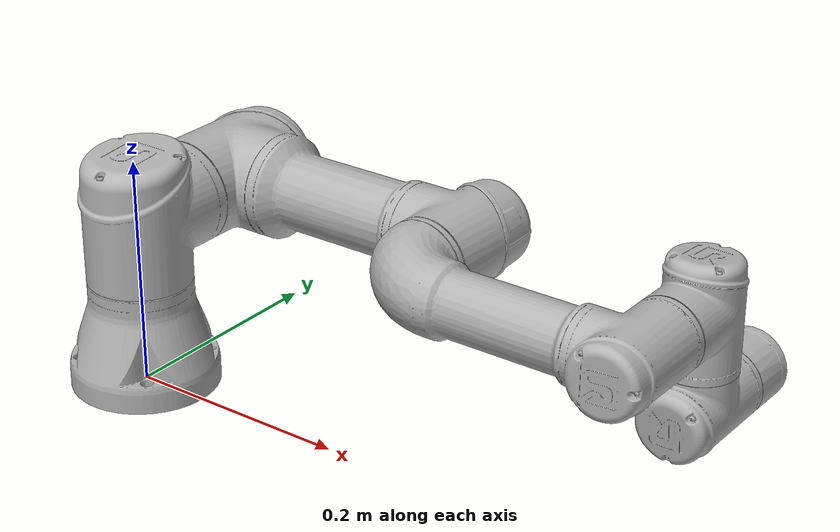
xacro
<?xml version="1.0"?>
<robot xmlns:xacro="http://ros.org/wiki/xacro"
       name="ur3e" >

  <xacro:arg name="transmission_hw_interface" default="hardware_interface/PositionJointInterface"/>

  <!-- common stuff -->
  <xacro:include filename="$(find ur_e_description)/urdf/common.gazebo.xacro" />

  <!-- ur3e -->
  <xacro:include filename="$(find ur_e_description)/urdf/ur3e.urdf.xacro" />

  <!-- arm -->
  <xacro:ur3e_robot prefix="" joint_limited="true"
    shoulder_pan_lower_limit="${-pi}" shoulder_pan_upper_limit="${pi}"
    shoulder_lift_lower_limit="${-pi}" shoulder_lift_upper_limit="${pi}"
    elbow_joint_lower_limit="${-pi}" elbow_joint_upper_limit="${pi}"
    wrist_1_lower_limit="${-pi}" wrist_1_upper_limit="${pi}"
    wrist_2_lower_limit="${-pi}" wrist_2_upper_limit="${pi}"
    wrist_3_lower_limit="${-pi}" wrist_3_upper_limit="${pi}"
    transmission_hw_interface="$(arg transmission_hw_interface)"
  />

  <link name="world" />

  <joint name="world_joint" type="fixed">
    <parent link="world" />
    <child link = "base_link" />
    <origin xyz="0.0 0.0 0.0" rpy="0.0 0.0 0.0" />
  </joint>

</robot>

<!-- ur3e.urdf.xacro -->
<robot xmlns:xacro="http://ros.org/wiki/xacro">

<!--
  Author: Felix Messmer
-->

  <xacro:include filename="$(find ur_e_description)/urdf/ur.transmission.xacro" />
  <xacro:include filename="$(find ur_e_description)/urdf/ur.gazebo.xacro" />

   <xacro:macro name="cylinder_inertial" params="radius length mass *origin">
    <inertial>
      <mass value="${mass}" />
      <xacro:insert_block name="origin" />
      <inertia ixx="${0.0833333 * mass * (3 * radius * radius + length * length)}" ixy="0.0" ixz="0.0"
        iyy="${0.0833333 * mass * (3 * radius * radius + length * length)}" iyz="0.0"
        izz="${0.5 * mass * radius * radius}" />
    </inertial>
  </xacro:macro>

  <xacro:macro name="ur3e_robot" params="prefix joint_limited
    shoulder_pan_lower_limit:=${-pi}    shoulder_pan_upper_limit:=${pi}
    shoulder_lift_lower_limit:=${-pi}    shoulder_lift_upper_limit:=${pi}
    elbow_joint_lower_limit:=${-pi}    elbow_joint_upper_limit:=${pi}
    wrist_1_lower_limit:=${-pi}    wrist_1_upper_limit:=${pi}
    wrist_2_lower_limit:=${-pi}    wrist_2_upper_limit:=${pi}
    wrist_3_lower_limit:=${-pi}    wrist_3_upper_limit:=${pi}
    transmission_hw_interface:=hardware_interface/PositionJointInterface
    safety_limits:=false safety_pos_margin:=0.15
    safety_k_position:=20">

    <!-- Inertia parameters -->
    <xacro:property name="base_mass" value="2.0" />  <!-- This mass might be incorrect -->
    <xacro:property name="shoulder_mass" value="2.0" />
    <xacro:property name="upper_arm_mass" value="3.42" />
    <xacro:property name="forearm_mass" value="1.26" />
    <xacro:property name="wrist_1_mass" value="0.8" />
    <xacro:property name="wrist_2_mass" value="0.8" />
    <xacro:property name="wrist_3_mass" value="0.35" />

    <xacro:property name="shoulder_cog" value="0.0 -0.02 0.0" />
    <xacro:property name="upper_arm_cog" value="0.13 0.0 0.1157" />
    <xacro:property name="forearm_cog" value="0.05 0.0 0.0238" />
    <xacro:property name="wrist_1_cog" value="0.0 0.0 0.01" />
    <xacro:property name="wrist_2_cog" value="0.0 0.0 0.01" />
    <xacro:property name="wrist_3_cog" value="0.0 0.0 -0.02" />

    <!-- Kinematic model -->
    <!-- Properties from urcontrol.conf -->
    <xacro:property name="d1" value="0.152" />
    <xacro:property name="a2" value="-0.244" />
    <xacro:property name="a3" value="-0.213" />
    <xacro:property name="d4" value="0.104" />
    <xacro:property name="d5" value="0.085" />
    <xacro:property name="d6" value="0.092" />

    <!-- Arbitrary offsets for shoulder/elbow joints -->
    <xacro:property name="shoulder_offset" value="0.120" />  <!-- measured from model -->
    <xacro:property name="elbow_offset" value="-0.093" /> <!-- measured from model -->

    <!-- link lengths used in model -->
    <xacro:property name="shoulder_height" value="${d1}" />
    <xacro:property name="upper_arm_length" value="${-a2}" />
    <xacro:property name="forearm_length" value="${-a3}" />
    <xacro:property name="wrist_1_length" value="${d4}" />
    <xacro:property name="wrist_2_length" value="${d5}" />
    <xacro:property name="wrist_3_length" value="${d6}" />

    <link name="${prefix}base_link" >
      <visual>
        <geometry>
          <mesh filename="package://ur_e_description/meshes/ur3e/visual/base.dae"/>
        </geometry>
        <material name="LightGrey">
          <color rgba="0.7 0.7 0.7 1.0"/>
        </material>
      </visual>
      <collision>
        <geometry>
          <mesh filename="package://ur_e_description/meshes/ur3e/collision/base.stl"/>
        </geometry>
      </collision>
      <xacro:cylinder_inertial radius="0.075" length="0.038" mass="${base_mass}">
        <origin xyz="0.0 0.0 0.0" rpy="0 0 0" />
      </xacro:cylinder_inertial>
    </link>

    <joint name="${prefix}shoulder_pan_joint" type="revolute">
      <parent link="${prefix}base_link" />
      <child link = "${prefix}shoulder_link" />
      <origin xyz="0.0 0.0 ${shoulder_height}" rpy="0.0 0.0 0.0" />
      <axis xyz="0 0 1" />
      <xacro:unless value="${joint_limited}">
        <limit lower="${-2.0 * pi}" upper="${2.0 * pi}" effort="330.0" velocity="3.14"/>
        <xacro:if value="${safety_limits}">
          <safety_controller soft_lower_limit="${-2.0 * pi + safety_pos_margin}" soft_upper_limit="${2.0 * pi - safety_pos_margin}" k_position="${safety_k_position}" k_velocity="0.0"/>
        </xacro:if>
      </xacro:unless>
      <xacro:if value="${joint_limited}">
        <limit lower="${shoulder_pan_lower_limit}" upper="${shoulder_pan_upper_limit}" effort="330.0" velocity="3.14"/>
        <xacro:if value="${safety_limits}">
          <safety_controller soft_lower_limit="${shoulder_pan_lower_limit + safety_pos_margin}" soft_upper_limit="${shoulder_pan_upper_limit - safety_pos_margin}" k_position="${safety_k_position}" k_velocity="0.0"/>
        </xacro:if>
      </xacro:if>
      <dynamics damping="0.0" friction="0.0"/>
    </joint>

    <link name="${prefix}shoulder_link">
      <visual>
        <geometry>
          <mesh filename="package://ur_e_description/meshes/ur3e/visual/shoulder.dae"/>
        </geometry>
        <material name="LightGrey">
          <color rgba="0.7 0.7 0.7 1.0"/>
        </material>
      </visual>
      <collision>
        <geometry>
          <mesh filename="package://ur_e_description/meshes/ur3e/collision/shoulder.stl"/>
        </geometry>
      </collision>
      <xacro:cylinder_inertial radius="0.075" length="0.178" mass="${shoulder_mass}">
        <origin xyz="0.0 0.0 0.0" rpy="0 0 0" />
      </xacro:cylinder_inertial>
    </link>

    <joint name="${prefix}shoulder_lift_joint" type="revolute">
      <parent link="${prefix}shoulder_link" />
      <child link = "${prefix}upper_arm_link" />
      <origin xyz="0.0 ${shoulder_offset} 0.0" rpy="0.0 ${pi / 2.0} 0.0" />
      <axis xyz="0 1 0" />
      <xacro:unless value="${joint_limited}">
        <limit lower="${-2.0 * pi}" upper="${2.0 * pi}" effort="330.0" velocity="3.14"/>
        <xacro:if value="${safety_limits}">
          <safety_controller soft_lower_limit="${-2.0 * pi + safety_pos_margin}" soft_upper_limit="${2.0 * pi - safety_pos_margin}" k_position="${safety_k_position}" k_velocity="0.0"/>
        </xacro:if>
      </xacro:unless>
      <xacro:if value="${joint_limited}">
        <limit lower="${shoulder_lift_lower_limit}" upper="${shoulder_lift_upper_limit}" effort="330.0" velocity="3.14"/>
        <xacro:if value="${safety_limits}">
          <safety_controller soft_lower_limit="${shoulder_lift_lower_limit + safety_pos_margin}" soft_upper_limit="${shoulder_lift_upper_limit - safety_pos_margin}" k_position="${safety_k_position}" k_velocity="0.0"/>
        </xacro:if>
      </xacro:if>
      <dynamics damping="0.0" friction="0.0"/>
    </joint>

    <link name="${prefix}upper_arm_link">
      <visual>
        <geometry>
          <mesh filename="package://ur_e_description/meshes/ur3e/visual/upperarm.dae"/>
        </geometry>
        <material name="LightGrey">
          <color rgba="0.7 0.7 0.7 1.0"/>
        </material>
      </visual>
      <collision>
        <geometry>
          <mesh filename="package://ur_e_description/meshes/ur3e/collision/upperarm.stl"/>
        </geometry>
      </collision>
      <xacro:cylinder_inertial radius="0.075" length="${-a2}" mass="${upper_arm_mass}">
        <origin xyz="0.0 0.0 ${-a2/2.0}" rpy="0 0 0" />
      </xacro:cylinder_inertial>
    </link>

    <joint name="${prefix}elbow_joint" type="revolute">
      <parent link="${prefix}upper_arm_link" />
      <child link = "${prefix}forearm_link" />
      <origin xyz="0.0 ${elbow_offset} ${upper_arm_length}" rpy="0.0 0.0 0.0" />
      <axis xyz="0 1 0" />
      <xacro:unless value="${joint_limited}">
        <limit lower="${-pi}" upper="${pi}" effort="150.0" velocity="3.14"/>
        <xacro:if value="${safety_limits}">
          <safety_controller soft_lower_limit="${-2.0 * pi + safety_pos_margin}" soft_upper_limit="${2.0 * pi - safety_pos_margin}" k_position="${safety_k_position}" k_velocity="0.0"/>
        </xacro:if>
      </xacro:unless>
      <xacro:if value="${joint_limited}">
        <limit lower="${elbow_joint_lower_limit}" upper="${elbow_joint_upper_limit}" effort="150.0" velocity="3.14"/>
        <xacro:if value="${safety_limits}">
          <safety_controller soft_lower_limit="${elbow_joint_lower_limit + safety_pos_margin}" soft_upper_limit="${elbow_joint_upper_limit - safety_pos_margin}" k_position="${safety_k_position}" k_velocity="0.0"/>
        </xacro:if>
      </xacro:if>
      <dynamics damping="0.0" friction="0.0"/>
    </joint>

    <link name="${prefix}forearm_link">
      <visual>
         <geometry>
          <mesh filename="package://ur_e_description/meshes/ur3e/visual/forearm.dae"/>
        </geometry>
        <material name="LightGrey">
          <color rgba="0.7 0.7 0.7 1.0"/>
        </material>
      </visual>
      <collision>
        <geometry>
          <mesh filename="package://ur_e_description/meshes/ur3e/collision/forearm.stl"/>
        </geometry>
      </collision>
      <xacro:cylinder_inertial radius="0.075" length="${-a3}" mass="${forearm_mass}">
        <origin xyz="0.0 0.0 ${-a3/2.0}" rpy="0 0 0" />
      </xacro:cylinder_inertial>
    </link>

    <joint name="${prefix}wrist_1_joint" type="revolute">
      <parent link="${prefix}forearm_link" />
      <child link = "${prefix}wrist_1_link" />
      <origin xyz="0.0 0.0 ${forearm_length}" rpy="0.0 ${pi / 2.0} 0.0" />
      <axis xyz="0 1 0" />
      <xacro:unless value="${joint_limited}">
        <limit lower="${-2.0 * pi}" upper="${2.0 * pi}" effort="54.0" velocity="6.28"/>
        <xacro:if value="${safety_limits}">
          <safety_controller soft_lower_limit="${-2.0 * pi + safety_pos_margin}" soft_upper_limit="${2.0 * pi - safety_pos_margin}" k_position="${safety_k_position}" k_velocity="0.0"/>
        </xacro:if>
      </xacro:unless>
      <xacro:if value="${joint_limited}">
        <limit lower="${wrist_1_lower_limit}" upper="${wrist_1_upper_limit}" effort="54.0" velocity="6.28"/>
        <xacro:if value="${safety_limits}">
          <safety_controller soft_lower_limit="${wrist_1_lower_limit + safety_pos_margin}" soft_upper_limit="${wrist_1_upper_limit - safety_pos_margin}" k_position="${safety_k_position}" k_velocity="0.0"/>
        </xacro:if>
      </xacro:if>
      <dynamics damping="0.0" friction="0.0"/>
    </joint>

    <link name="${prefix}wrist_1_link">
      <visual>
        <geometry>
          <mesh filename="package://ur_e_description/meshes/ur3e/visual/wrist1.dae"/>
        </geometry>
        <material name="LightGrey">
          <color rgba="0.7 0.7 0.7 1.0"/>
        </material>
      </visual>
      <collision>
        <geometry>
          <mesh filename="package://ur_e_description/meshes/ur3e/collision/wrist1.stl"/>
        </geometry>
      </collision>
      <xacro:cylinder_inertial radius="0.075" length="0.12" mass="${wrist_1_mass}">
        <origin xyz="0.0 ${wrist_1_length} 0.0" rpy="0 0 0" />
      </xacro:cylinder_inertial>
    </link>

    <joint name="${prefix}wrist_2_joint" type="revolute">
      <parent link="${prefix}wrist_1_link" />
      <child link = "${prefix}wrist_2_link" />
      <origin xyz="0.0 ${wrist_1_length} 0.0" rpy="0.0 0.0 0.0" />
      <axis xyz="0 0 1" />
      <xacro:unless value="${joint_limited}">
        <limit lower="${-2.0 * pi}" upper="${2.0 * pi}" effort="54.0" velocity="6.28"/>
        <xacro:if value="${safety_limits}">
          <safety_controller soft_lower_limit="${-2.0 * pi + safety_pos_margin}" soft_upper_limit="${2.0 * pi - safety_pos_margin}" k_position="${safety_k_position}" k_velocity="0.0"/>
        </xacro:if>
      </xacro:unless>
      <xacro:if value="${joint_limited}">
        <limit lower="${wrist_2_lower_limit}" upper="${wrist_2_upper_limit}" effort="54.0" velocity="6.28"/>
        <xacro:if value="${safety_limits}">
          <safety_controller soft_lower_limit="${wrist_2_lower_limit + safety_pos_margin}" soft_upper_limit="${wrist_2_upper_limit - safety_pos_margin}" k_position="${safety_k_position}" k_velocity="0.0"/>
        </xacro:if>
      </xacro:if>
      <dynamics damping="0.0" friction="0.0"/>
    </joint>

    <link name="${prefix}wrist_2_link">
      <visual>
        <geometry>
          <mesh filename="package://ur_e_description/meshes/ur3e/visual/wrist2.dae"/>
        </geometry>
        <material name="LightGrey">
          <color rgba="0.7 0.7 0.7 1.0"/>
        </material>
      </visual>
      <collision>
        <geometry>
          <mesh filename="package://ur_e_description/meshes/ur3e/collision/wrist2.stl"/>
        </geometry>
      </collision>
      <xacro:cylinder_inertial radius="0.075" length="0.12" mass="${wrist_2_mass}">
        <origin xyz="0.0 0.0 ${wrist_2_length}" rpy="0 0 0" />
      </xacro:cylinder_inertial>
    </link>

    <joint name="${prefix}wrist_3_joint" type="revolute">
      <parent link="${prefix}wrist_2_link" />
      <child link = "${prefix}wrist_3_link" />
      <origin xyz="0.0 0.0 ${wrist_2_length}" rpy="0.0 0.0 0.0" />
      <axis xyz="0 1 0" />
      <xacro:unless value="${joint_limited}">
        <limit lower="${-2.0 * pi}" upper="${2.0 * pi}" effort="54.0" velocity="6.28"/>
        <xacro:if value="${safety_limits}">
          <safety_controller soft_lower_limit="${-2.0 * pi + safety_pos_margin}" soft_upper_limit="${2.0 * pi - safety_pos_margin}" k_position="${safety_k_position}" k_velocity="0.0"/>
        </xacro:if>
      </xacro:unless>
      <xacro:if value="${joint_limited}">
        <limit lower="${wrist_3_lower_limit}" upper="${wrist_3_upper_limit}" effort="54.0" velocity="6.28"/>
        <xacro:if value="${safety_limits}">
          <safety_controller soft_lower_limit="${wrist_3_lower_limit + safety_pos_margin}" soft_upper_limit="${wrist_3_upper_limit - safety_pos_margin}" k_position="${safety_k_position}" k_velocity="0.0"/>
        </xacro:if>
      </xacro:if>
      <dynamics damping="0.0" friction="0.0"/>
    </joint>

    <link name="${prefix}wrist_3_link">
      <visual>
        <geometry>
          <mesh filename="package://ur_e_description/meshes/ur3e/visual/wrist3.dae"/>
        </geometry>
        <material name="LightGrey">
          <color rgba="0.7 0.7 0.7 1.0"/>
        </material>
      </visual>
      <collision>
        <geometry>
          <mesh filename="package://ur_e_description/meshes/ur3e/collision/wrist3.stl"/>
        </geometry>
      </collision>
      <xacro:cylinder_inertial radius="0.032" length="0.042" mass="${wrist_3_mass}">
        <origin xyz="0.0 ${wrist_3_length - 0.021} 0.0" rpy="${pi/2} 0 0" />
      </xacro:cylinder_inertial>
    </link>

    <joint name="${prefix}ee_fixed_joint" type="fixed">
      <parent link="${prefix}wrist_3_link" />
      <child link = "${prefix}ee_link" />
      <origin xyz="0.0 ${wrist_3_length} 0.0" rpy="0.0 0.0 ${pi/2.0}" />
    </joint>

    <link name="${prefix}ee_link">
      <collision>
        <geometry>
          <box size="0.01 0.01 0.01"/>
        </geometry>
        <origin rpy="0 0 0" xyz="-0.01 0 0"/>
      </collision>
    </link>

    <xacro:ur_arm_transmission prefix="${prefix}" hw_interface="${transmission_hw_interface}" />
    <xacro:ur_arm_gazebo prefix="${prefix}" />

    <!-- ROS base_link to UR 'Base' Coordinates transform -->
    <link name="${prefix}base"/>
    <joint name="${prefix}base_link-base_fixed_joint" type="fixed">
      <!-- NOTE: this rotation is only needed as long as base_link itself is
                 not corrected wrt the real robot (ie: rotated over 180
                 degrees)
      -->
      <origin xyz="0 0 0" rpy="0 0 ${-pi}"/>
      <parent link="${prefix}base_link"/>
      <child link="${prefix}base"/>
    </joint>

    <!-- Frame coincident with all-zeros TCP on UR controller -->
    <link name="${prefix}tool0"/>
    <joint name="${prefix}wrist_3_link-tool0_fixed_joint" type="fixed">
      <origin xyz="0 ${wrist_3_length} 0" rpy="${pi/-2.0} 0 0"/>
      <parent link="${prefix}wrist_3_link"/>
      <child link="${prefix}tool0"/>
    </joint>

  </xacro:macro>
</robot>
